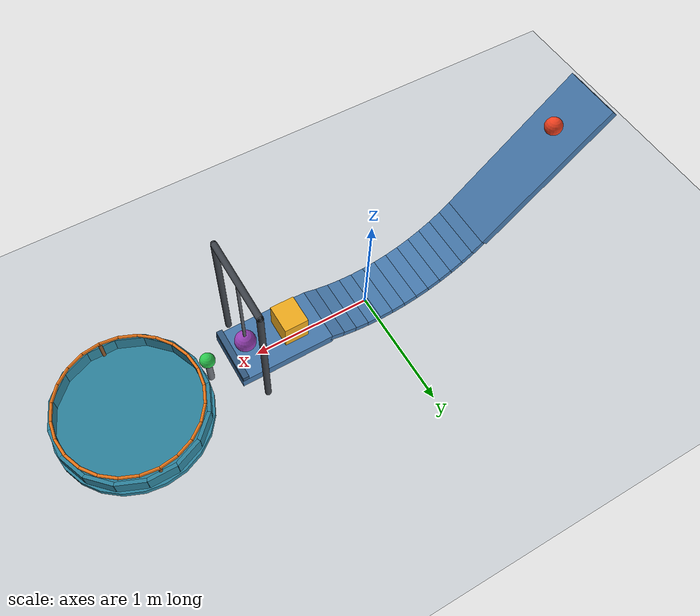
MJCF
<mujoco model="halfpipe_chain_reaction">
  <compiler angle="degree" autolimits="true" inertiafromgeom="true"/>
  <option timestep="0.002" gravity="0 0 -9.81" integrator="implicitfast" iterations="100" cone="elliptic"/>
  <size njmax="2000" nconmax="500"/>
  <visual>
    <headlight ambient="0.45 0.45 0.45" diffuse="0.75 0.75 0.75" specular="0.25 0.25 0.25"/>
    <rgba haze="0.85 0.9 0.95 1"/>
  </visual>
  <statistic center="0.5 0 0.65" extent="4.5"/>

  <worldbody>
    <light name="overhead_light" pos="0 -3 5" dir="0 0.4 -1" directional="true"/>
    <camera name="overview" pos="3.8 -6 3.4" xyaxes="0.88 0.47 0 -0.20 0.38 0.90"/>
    <geom name="floor" type="plane" pos="0 0 0" size="5 3 0.1" friction="0.8 0.01 0.002" rgba="0.82 0.84 0.86 1"/>

    <!-- The starting point is one metre along the 45-degree approach ramp. -->
    <body name="ramp" pos="0 0 0">
      <geom name="ramp_surface" type="box" pos="-1.42482 0 0.90978" quat="0.9238795 0 0.3826834 0" size="0.675 0.23 0.04" friction="0.06 0.002 0.0002" solref="0.012 1" rgba="0.28 0.48 0.68 1"/>
    </body>

    <!-- Primitive boxes approximate a circular U-shaped track. -->
    <body name="halfpipe" pos="0 0 0">
      <geom name="halfpipe_arc_01" type="box" pos="-0.89434 0 0.40400" quat="0.932008 0 0.362438 0" size="0.0577 0.23 0.025" friction="0.06 0.002 0.0002" solref="0.012 1" rgba="0.28 0.48 0.68 1"/>
      <geom name="halfpipe_arc_02" type="box" pos="-0.80585 0 0.32980" quat="0.946930 0 0.321439 0" size="0.0577 0.23 0.025" friction="0.06 0.002 0.0002" solref="0.012 1" rgba="0.28 0.48 0.68 1"/>
      <geom name="halfpipe_arc_03" type="box" pos="-0.71125 0 0.26356" quat="0.960050 0 0.279829 0" size="0.0577 0.23 0.025" friction="0.06 0.002 0.0002" solref="0.012 1" rgba="0.28 0.48 0.68 1"/>
      <geom name="halfpipe_arc_04" type="box" pos="-0.61125 0 0.20581" quat="0.971342 0 0.237686 0" size="0.0577 0.23 0.025" friction="0.06 0.002 0.0002" solref="0.012 1" rgba="0.28 0.48 0.68 1"/>
      <geom name="halfpipe_arc_05" type="box" pos="-0.50658 0 0.15700" quat="0.980785 0 0.195090 0" size="0.0577 0.23 0.025" friction="0.06 0.002 0.0002" solref="0.012 1" rgba="0.28 0.48 0.68 1"/>
      <geom name="halfpipe_arc_06" type="box" pos="-0.39806 0 0.11750" quat="0.988362 0 0.152123 0" size="0.0577 0.23 0.025" friction="0.06 0.002 0.0002" solref="0.012 1" rgba="0.28 0.48 0.68 1"/>
      <geom name="halfpipe_arc_07" type="box" pos="-0.28652 0 0.08762" quat="0.994056 0 0.108867 0" size="0.0577 0.23 0.025" friction="0.06 0.002 0.0002" solref="0.012 1" rgba="0.28 0.48 0.68 1"/>
      <geom name="halfpipe_arc_08" type="box" pos="-0.17279 0 0.06756" quat="0.997859 0 0.065403 0" size="0.0577 0.23 0.025" friction="0.06 0.002 0.0002" solref="0.012 1" rgba="0.28 0.48 0.68 1"/>
      <geom name="halfpipe_arc_09" type="box" pos="-0.05774 0 0.05750" quat="0.999762 0 0.021815 0" size="0.0577 0.23 0.025" friction="0.06 0.002 0.0002" solref="0.012 1" rgba="0.28 0.48 0.68 1"/>
      <geom name="halfpipe_arc_10" type="box" pos="0.05774 0 0.05750" quat="0.999762 0 -0.021815 0" size="0.0577 0.23 0.025" friction="0.06 0.002 0.0002" solref="0.012 1" rgba="0.28 0.48 0.68 1"/>
      <geom name="halfpipe_arc_11" type="box" pos="0.17279 0 0.06756" quat="0.997859 0 -0.065403 0" size="0.0577 0.23 0.025" friction="0.06 0.002 0.0002" solref="0.012 1" rgba="0.28 0.48 0.68 1"/>
      <geom name="halfpipe_arc_12" type="box" pos="0.28652 0 0.08762" quat="0.994056 0 -0.108867 0" size="0.0577 0.23 0.025" friction="0.06 0.002 0.0002" solref="0.012 1" rgba="0.28 0.48 0.68 1"/>
      <geom name="halfpipe_arc_13" type="box" pos="0.39806 0 0.11750" quat="0.988362 0 -0.152123 0" size="0.0577 0.23 0.025" friction="0.06 0.002 0.0002" solref="0.012 1" rgba="0.28 0.48 0.68 1"/>
      <geom name="halfpipe_exit_shelf" type="box" pos="0.8373 0 0.1184" size="0.3927 0.23 0.04" friction="0.06 0.002 0.0002" solref="0.012 1" rgba="0.28 0.48 0.68 1"/>
      <geom name="halfpipe_block_stop" type="box" pos="1.20 0 0.1784" size="0.025 0.23 0.02" friction="0.2 0.002 0.0002" solref="0.012 1" rgba="0.20 0.35 0.50 1"/>
    </body>

    <body name="ball1" pos="-1.576707 0 1.217506">
      <freejoint name="ball1_free"/>
      <geom name="ball1_sphere" type="sphere" size="0.07" mass="0.8" friction="0.06 0.002 0.0002" solref="0.012 1" rgba="0.95 0.25 0.12 1"/>
    </body>

    <body name="block" pos="0.70 0 0.2684">
      <freejoint name="block_free"/>
      <geom name="block_box" type="box" size="0.10 0.12 0.11" mass="0.28" friction="0.06 0.002 0.0002" solref="0.012 1" rgba="0.95 0.68 0.12 1"/>
    </body>

    <body name="pendulum_frame" pos="0 0 0">
      <geom name="pendulum_frame_left" type="capsule" fromto="1.08 -0.34 0.025 1.08 -0.34 1.15" size="0.025" rgba="0.25 0.27 0.30 1"/>
      <geom name="pendulum_frame_right" type="capsule" fromto="1.08 0.34 0.025 1.08 0.34 1.15" size="0.025" rgba="0.25 0.27 0.30 1"/>
      <geom name="pendulum_frame_axle" type="capsule" fromto="1.08 -0.34 1.15 1.08 0.34 1.15" size="0.025" rgba="0.25 0.27 0.30 1"/>
    </body>

    <body name="pendulum" pos="1.08 0 1.15">
      <joint name="pendulum_hinge" type="hinge" axis="0 1 0" limited="true" range="-75 75" damping="0.002"/>
      <geom name="pendulum_rod" type="capsule" fromto="0 0 -0.035 0 0 -0.85" size="0.012" mass="0.014" friction="0.06 0.002 0.0002" rgba="0.35 0.37 0.40 1"/>
      <geom name="pendulum_bob" type="sphere" pos="0 0 -0.85" size="0.085" mass="0.18" friction="0.06 0.002 0.0002" solref="0.012 1" rgba="0.60 0.25 0.72 1"/>
    </body>

    <body name="ball2_stand" pos="1.40 0 0">
      <geom name="ball2_stand_perch" type="cylinder" pos="0 0 0.1125" size="0.026 0.1125" friction="0.06 0.002 0.0002" solref="0.012 1" rgba="0.45 0.47 0.50 1"/>
    </body>

    <body name="ball2" pos="1.40 0 0.285">
      <freejoint name="ball2_free"/>
      <geom name="ball2_sphere" type="sphere" size="0.06" mass="0.045" condim="6" friction="0.06 0.003 0.0005" solref="0.008 1" rgba="0.18 0.80 0.32 1"/>
    </body>

    <!-- Horizontal drop hoop, assembled from capsules. -->
    <body name="hoop" pos="2.05 0 0.23">
      <geom name="hoop_ring_01" type="capsule" fromto="0.565 0 0 0.545748 0.146233 0" size="0.012" rgba="0.95 0.48 0.10 1"/>
      <geom name="hoop_ring_02" type="capsule" fromto="0.545748 0.146233 0 0.489304 0.2825 0" size="0.012" rgba="0.95 0.48 0.10 1"/>
      <geom name="hoop_ring_03" type="capsule" fromto="0.489304 0.2825 0 0.399515 0.399515 0" size="0.012" rgba="0.95 0.48 0.10 1"/>
      <geom name="hoop_ring_04" type="capsule" fromto="0.399515 0.399515 0 0.2825 0.489304 0" size="0.012" rgba="0.95 0.48 0.10 1"/>
      <geom name="hoop_ring_05" type="capsule" fromto="0.2825 0.489304 0 0.146233 0.545748 0" size="0.012" rgba="0.95 0.48 0.10 1"/>
      <geom name="hoop_ring_06" type="capsule" fromto="0.146233 0.545748 0 0 0.565 0" size="0.012" rgba="0.95 0.48 0.10 1"/>
      <geom name="hoop_ring_07" type="capsule" fromto="0 0.565 0 -0.146233 0.545748 0" size="0.012" rgba="0.95 0.48 0.10 1"/>
      <geom name="hoop_ring_08" type="capsule" fromto="-0.146233 0.545748 0 -0.2825 0.489304 0" size="0.012" rgba="0.95 0.48 0.10 1"/>
      <geom name="hoop_ring_09" type="capsule" fromto="-0.2825 0.489304 0 -0.399515 0.399515 0" size="0.012" rgba="0.95 0.48 0.10 1"/>
      <geom name="hoop_ring_10" type="capsule" fromto="-0.399515 0.399515 0 -0.489304 0.2825 0" size="0.012" rgba="0.95 0.48 0.10 1"/>
      <geom name="hoop_ring_11" type="capsule" fromto="-0.489304 0.2825 0 -0.545748 0.146233 0" size="0.012" rgba="0.95 0.48 0.10 1"/>
      <geom name="hoop_ring_12" type="capsule" fromto="-0.545748 0.146233 0 -0.565 0 0" size="0.012" rgba="0.95 0.48 0.10 1"/>
      <geom name="hoop_ring_13" type="capsule" fromto="-0.565 0 0 -0.545748 -0.146233 0" size="0.012" rgba="0.95 0.48 0.10 1"/>
      <geom name="hoop_ring_14" type="capsule" fromto="-0.545748 -0.146233 0 -0.489304 -0.2825 0" size="0.012" rgba="0.95 0.48 0.10 1"/>
      <geom name="hoop_ring_15" type="capsule" fromto="-0.489304 -0.2825 0 -0.399515 -0.399515 0" size="0.012" rgba="0.95 0.48 0.10 1"/>
      <geom name="hoop_ring_16" type="capsule" fromto="-0.399515 -0.399515 0 -0.2825 -0.489304 0" size="0.012" rgba="0.95 0.48 0.10 1"/>
      <geom name="hoop_ring_17" type="capsule" fromto="-0.2825 -0.489304 0 -0.146233 -0.545748 0" size="0.012" rgba="0.95 0.48 0.10 1"/>
      <geom name="hoop_ring_18" type="capsule" fromto="-0.146233 -0.545748 0 0 -0.565 0" size="0.012" rgba="0.95 0.48 0.10 1"/>
      <geom name="hoop_ring_19" type="capsule" fromto="0 -0.565 0 0.146233 -0.545748 0" size="0.012" rgba="0.95 0.48 0.10 1"/>
      <geom name="hoop_ring_20" type="capsule" fromto="0.146233 -0.545748 0 0.2825 -0.489304 0" size="0.012" rgba="0.95 0.48 0.10 1"/>
      <geom name="hoop_ring_21" type="capsule" fromto="0.2825 -0.489304 0 0.399515 -0.399515 0" size="0.012" rgba="0.95 0.48 0.10 1"/>
      <geom name="hoop_ring_22" type="capsule" fromto="0.399515 -0.399515 0 0.489304 -0.2825 0" size="0.012" rgba="0.95 0.48 0.10 1"/>
      <geom name="hoop_ring_23" type="capsule" fromto="0.489304 -0.2825 0 0.545748 -0.146233 0" size="0.012" rgba="0.95 0.48 0.10 1"/>
      <geom name="hoop_ring_24" type="capsule" fromto="0.545748 -0.146233 0 0.565 0 0" size="0.012" rgba="0.95 0.48 0.10 1"/>
      <geom name="hoop_support_left" type="cylinder" pos="0 -0.565 -0.121" size="0.014 0.109" rgba="0.55 0.35 0.18 1"/>
      <geom name="hoop_support_right" type="cylinder" pos="0 0.565 -0.121" size="0.014 0.109" rgba="0.55 0.35 0.18 1"/>
    </body>

    <!-- Dissipative floor and closed polygonal walls retain the second ball. -->
    <body name="cup" pos="2.05 0 0">
      <geom name="cup_bottom" type="cylinder" pos="0 0 0.025" size="0.62 0.025" condim="6" friction="1.1 0.02 0.005" solref="0.008 1" solimp="0.95 0.99 0.001" rgba="0.18 0.52 0.62 1"/>
      <geom name="cup_wall_01" type="box" pos="0.58 0 0.115" quat="1 0 0 0" size="0.015 0.117 0.065" condim="6" friction="1.1 0.02 0.005" solref="0.008 1" rgba="0.18 0.52 0.62 1"/>
      <geom name="cup_wall_02" type="box" pos="0.535850 0.221956 0.115" quat="0.980785 0 0 0.195090" size="0.015 0.117 0.065" condim="6" friction="1.1 0.02 0.005" solref="0.008 1" rgba="0.18 0.52 0.62 1"/>
      <geom name="cup_wall_03" type="box" pos="0.410122 0.410122 0.115" quat="0.923880 0 0 0.382683" size="0.015 0.117 0.065" condim="6" friction="1.1 0.02 0.005" solref="0.008 1" rgba="0.18 0.52 0.62 1"/>
      <geom name="cup_wall_04" type="box" pos="0.221956 0.535850 0.115" quat="0.831470 0 0 0.555570" size="0.015 0.117 0.065" condim="6" friction="1.1 0.02 0.005" solref="0.008 1" rgba="0.18 0.52 0.62 1"/>
      <geom name="cup_wall_05" type="box" pos="0 0.58 0.115" quat="0.707107 0 0 0.707107" size="0.015 0.117 0.065" condim="6" friction="1.1 0.02 0.005" solref="0.008 1" rgba="0.18 0.52 0.62 1"/>
      <geom name="cup_wall_06" type="box" pos="-0.221956 0.535850 0.115" quat="0.555570 0 0 0.831470" size="0.015 0.117 0.065" condim="6" friction="1.1 0.02 0.005" solref="0.008 1" rgba="0.18 0.52 0.62 1"/>
      <geom name="cup_wall_07" type="box" pos="-0.410122 0.410122 0.115" quat="0.382683 0 0 0.923880" size="0.015 0.117 0.065" condim="6" friction="1.1 0.02 0.005" solref="0.008 1" rgba="0.18 0.52 0.62 1"/>
      <geom name="cup_wall_08" type="box" pos="-0.535850 0.221956 0.115" quat="0.195090 0 0 0.980785" size="0.015 0.117 0.065" condim="6" friction="1.1 0.02 0.005" solref="0.008 1" rgba="0.18 0.52 0.62 1"/>
      <geom name="cup_wall_09" type="box" pos="-0.58 0 0.115" quat="0 0 0 1" size="0.015 0.117 0.065" condim="6" friction="1.1 0.02 0.005" solref="0.008 1" rgba="0.18 0.52 0.62 1"/>
      <geom name="cup_wall_10" type="box" pos="-0.535850 -0.221956 0.115" quat="-0.195090 0 0 0.980785" size="0.015 0.117 0.065" condim="6" friction="1.1 0.02 0.005" solref="0.008 1" rgba="0.18 0.52 0.62 1"/>
      <geom name="cup_wall_11" type="box" pos="-0.410122 -0.410122 0.115" quat="-0.382683 0 0 0.923880" size="0.015 0.117 0.065" condim="6" friction="1.1 0.02 0.005" solref="0.008 1" rgba="0.18 0.52 0.62 1"/>
      <geom name="cup_wall_12" type="box" pos="-0.221956 -0.535850 0.115" quat="-0.555570 0 0 0.831470" size="0.015 0.117 0.065" condim="6" friction="1.1 0.02 0.005" solref="0.008 1" rgba="0.18 0.52 0.62 1"/>
      <geom name="cup_wall_13" type="box" pos="0 -0.58 0.115" quat="-0.707107 0 0 0.707107" size="0.015 0.117 0.065" condim="6" friction="1.1 0.02 0.005" solref="0.008 1" rgba="0.18 0.52 0.62 1"/>
      <geom name="cup_wall_14" type="box" pos="0.221956 -0.535850 0.115" quat="-0.831470 0 0 0.555570" size="0.015 0.117 0.065" condim="6" friction="1.1 0.02 0.005" solref="0.008 1" rgba="0.18 0.52 0.62 1"/>
      <geom name="cup_wall_15" type="box" pos="0.410122 -0.410122 0.115" quat="-0.923880 0 0 0.382683" size="0.015 0.117 0.065" condim="6" friction="1.1 0.02 0.005" solref="0.008 1" rgba="0.18 0.52 0.62 1"/>
      <geom name="cup_wall_16" type="box" pos="0.535850 -0.221956 0.115" quat="-0.980785 0 0 0.195090" size="0.015 0.117 0.065" condim="6" friction="1.1 0.02 0.005" solref="0.008 1" rgba="0.18 0.52 0.62 1"/>
    </body>
  </worldbody>

  <keyframe>
    <key name="start" qpos="-1.576707 0 1.217506 1 0 0 0 0.70 0 0.2684 1 0 0 0 0 1.40 0 0.285 1 0 0 0"/>
  </keyframe>
</mujoco>
